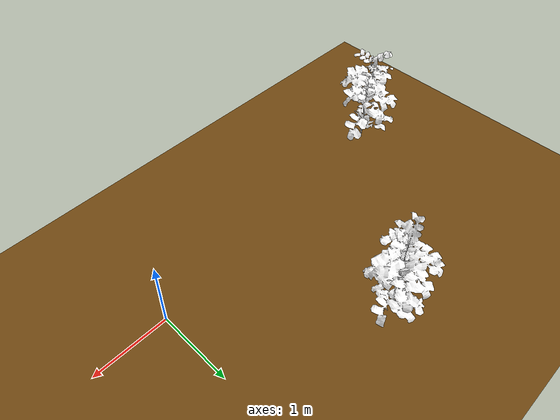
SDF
<sdf version="1.7">
 <world name="field">
  <light name="sun" type="directional">
   <pose>0 0 10 0 -0 0</pose>
   <diffuse>0.8 0.8 0.8 1</diffuse>
   <specular>0.2 0.2 0.2 1</specular>
   <attenuation>
    <range>1000</range>
    <constant>0.9</constant>
    <linear>0.01</linear>
    <quadratic>0.001</quadratic>
   </attenuation>
   <direction>-0.5 0.1 -0.9</direction>
   <spot><inner_angle>0</inner_angle><outer_angle>0</outer_angle><falloff>0</falloff></spot>
  </light>
  <model name="ground_plane">
   <static>true</static>
   <link name="link">
    <collision name="collision">
     <geometry><box><size>12.0 9.0 0.05</size></box></geometry>
     <surface>
      <contact><collide_bitmask>65535</collide_bitmask></contact>
      <friction><ode><mu>100</mu><mu2>50</mu2></ode></friction>
     </surface>
    </collision>
    <visual name="visual">
     <cast_shadows>0</cast_shadows>
     <geometry><box><size>12.0 9.0 0.05</size></box></geometry>
     <material>
      <ambient>0.45 0.29 0.07 1</ambient>
      <diffuse>0.45 0.29 0.07 1</diffuse>
      <specular>0.45 0.29 0.07 1</specular>
     </material>
    </visual>
   </link>
  </model>
  <gravity>0 0 -9.81</gravity>
  <magnetic_field>6e-06 2.3e-05 -4.2e-05</magnetic_field>
  <atmosphere type="adiabatic"/>
  <physics type="ode">
   <max_step_size>0.001</max_step_size>
   <real_time_factor>1</real_time_factor>
   <real_time_update_rate>1000</real_time_update_rate>
  </physics>
  <scene><ambient>0.4 0.4 0.4 1</ambient><background>0.7 0.7 0.7 1</background><shadows>1</shadows></scene>
  <audio><device>default</device></audio>
  <spherical_coordinates>
   <surface_model>EARTH_WGS84</surface_model>
   <latitude_deg>0</latitude_deg>
   <longitude_deg>0</longitude_deg>
   <elevation>0</elevation>
   <heading_deg>0</heading_deg>
  </spherical_coordinates>
  <include>
   <uri>model://tomato_3</uri>
   <name>tomato_3</name>
   <pose>-4.0 -0.40000000000000036 0 0 0 0</pose>
  </include>
  <include>
   <uri>model://tomato_14</uri>
   <name>tomato_14</name>
   <pose>-2.0 1.6999999999999993 0 0 0 0</pose>
  </include>
 </world>
</sdf>

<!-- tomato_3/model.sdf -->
<sdf version="1.6">
  <model name="tomato_3">
    <static>true</static>
    <link name="link">
      <collision name="collision">
        <geometry>
          <box>
            <size>.1 .1 1</size>
          </box>
        </geometry>
      </collision>
      <visual name="branch">
        <geometry>
          <mesh>
            <uri>model://tomato_3/meshes/tomato.dae</uri>
            <submesh>
              <name>Branch1</name>
            </submesh>
          </mesh>
        </geometry>
        <material>
          <diffuse>1.0 1.0 1.0</diffuse>
          <script>
            <uri>model://tomato_3/materials/scripts/</uri>
            <uri>model://tomato_3/materials/textures/</uri>
            <name>branch</name>
          </script>
          <pbr>
            <metal>
              <albedo_map>model://tomato_3/materials/textures/AG15brn1.png</albedo_map>
            </metal>
          </pbr>
        </material>
      </visual>
      <visual name="leaf1">
        <geometry>
          <mesh>
            <uri>model://tomato_3/meshes/tomato.dae</uri>
            <submesh>
              <name>Leaf1</name>
            </submesh>
          </mesh>
        </geometry>
        <material>
          <diffuse>1.0 1.0 1.0</diffuse>
          <script>
            <uri>model://tomato_3/materials/scripts/</uri>
            <uri>model://tomato_3/materials/textures/</uri>
            <name>leaf1</name>
          </script>
          <pbr>
            <metal>
              <albedo_map>model://tomato_3/materials/textures/AG15lef1.png</albedo_map>
            </metal>
          </pbr>
        </material>
      </visual>
      <visual name="leaf2">
        <geometry>
          <mesh>
            <uri>model://tomato_3/meshes/tomato.dae</uri>
            <submesh>
              <name>Leaf2</name>
            </submesh>
          </mesh>
        </geometry>
        <material>
          <diffuse>1.0 1.0 1.0</diffuse>
          <script>
            <uri>model://tomato_3/materials/scripts/</uri>
            <uri>model://tomato_3/materials/textures/</uri>
            <name>leaf2</name>
          </script>
          <pbr>
            <metal>
              <albedo_map>model://tomato_3/materials/textures/AG15lef2.png</albedo_map>
            </metal>
          </pbr>
        </material>
      </visual>
      <visual name="fruit1">
        <geometry>
          <mesh>
            <uri>model://tomato_3/meshes/tomato.dae</uri>
            <submesh>
              <name>Fruit1</name>
            </submesh>
          </mesh>
        </geometry>
        <material>
          <diffuse>1.0 1.0 1.0</diffuse>
          <script>
            <uri>model://tomato_3/materials/scripts/</uri>
            <uri>model://tomato_3/materials/textures/</uri>
            <name>fruit1</name>
          </script>
          <pbr>
            <metal>
              <albedo_map>model://tomato_3/materials/textures/AG15frt1.png</albedo_map>
            </metal>
          </pbr>
        </material>
      </visual>
      <visual name="fruit2">
        <geometry>
          <mesh>
            <uri>model://tomato_3/meshes/tomato.dae</uri>
            <submesh>
              <name>Fruit2</name>
            </submesh>
          </mesh>
        </geometry>
        <material>
          <diffuse>1.0 1.0 1.0</diffuse>
          <script>
            <uri>model://tomato_3/materials/scripts/</uri>
            <uri>model://tomato_3/materials/textures/</uri>
            <name>fruit2</name>
          </script>
          <pbr>
            <metal>
              <albedo_map>model://tomato_3/materials/textures/AG15frt2.png</albedo_map>
            </metal>
          </pbr>
        </material>
      </visual>
      <visual name="fruit3">
        <geometry>
          <mesh>
            <uri>model://tomato_3/meshes/tomato.dae</uri>
            <submesh>
              <name>Fruit3</name>
            </submesh>
          </mesh>
        </geometry>
        <material>
          <diffuse>1.0 1.0 1.0</diffuse>
          <script>
            <uri>model://tomato_3/materials/scripts/</uri>
            <uri>model://tomato_3/materials/textures/</uri>
            <name>fruit3</name>
          </script>
          <pbr>
            <metal>
              <albedo_map>model://tomato_3/materials/textures/AG15frt3.png</albedo_map>
            </metal>
          </pbr>
        </material>
      </visual>
      <visual name="fruit4">
        <geometry>
          <mesh>
            <uri>model://tomato_3/meshes/tomato.dae</uri>
            <submesh>
              <name>Fruit4</name>
            </submesh>
          </mesh>
        </geometry>
        <material>
          <diffuse>1.0 1.0 1.0</diffuse>
          <script>
            <uri>model://tomato_3/materials/scripts/</uri>
            <uri>model://tomato_3/materials/textures/</uri>
            <name>fruit4</name>
          </script>
          <pbr>
            <metal>
              <albedo_map>model://tomato_3/materials/textures/AG15frt4.png</albedo_map>
            </metal>
          </pbr>
        </material>
      </visual>
      <visual name="blossom1">
        <geometry>
          <mesh>
            <uri>model://tomato_3/meshes/tomato.dae</uri>
            <submesh>
              <name>Blossom1</name>
            </submesh>
          </mesh>
        </geometry>
        <material>
          <diffuse>1.0 1.0 1.0</diffuse>
          <script>
            <uri>model://tomato_3/materials/scripts/</uri>
            <uri>model://tomato_3/materials/textures/</uri>
            <name>blossom1</name>
          </script>
          <pbr>
            <metal>
              <albedo_map>model://tomato_3/materials/textures/AG15blo1.png</albedo_map>
            </metal>
          </pbr>
        </material>
      </visual>
      <visual name="blossom2">
        <geometry>
          <mesh>
            <uri>model://tomato_3/meshes/tomato.dae</uri>
            <submesh>
              <name>Blossom2</name>
            </submesh>
          </mesh>
        </geometry>
        <material>
          <diffuse>1.0 1.0 1.0</diffuse>
          <script>
            <uri>model://tomato_3/materials/scripts/</uri>
            <uri>model://tomato_3/materials/textures/</uri>
            <name>blossom2</name>
          </script>
          <pbr>
            <metal>
              <albedo_map>model://tomato_3/materials/textures/AG15blo2.png</albedo_map>
            </metal>
          </pbr>
        </material>
      </visual>
      <visual name="blossom3">
        <geometry>
          <mesh>
            <uri>model://tomato_3/meshes/tomato.dae</uri>
            <submesh>
              <name>Blossom3</name>
            </submesh>
          </mesh>
        </geometry>
        <material>
          <diffuse>1.0 1.0 1.0</diffuse>
          <script>
            <uri>model://tomato_3/materials/scripts/</uri>
            <uri>model://tomato_3/materials/textures/</uri>
            <name>blossom3</name>
          </script>
          <pbr>
            <metal>
              <albedo_map>model://tomato_3/materials/textures/AG15blo3.png</albedo_map>
            </metal>
          </pbr>
        </material>
      </visual>
    </link>
  </model>
</sdf>

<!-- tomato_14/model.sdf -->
<sdf version="1.6">
  <model name="tomato_14">
    <static>true</static>
    <link name="link">
      <collision name="collision">
        <geometry>
          <box>
            <size>.1 .1 1</size>
          </box>
        </geometry>
      </collision>
      <visual name="branch">
        <geometry>
          <mesh>
            <uri>model://tomato_14/meshes/tomato.dae</uri>
            <submesh>
              <name>Branch1</name>
            </submesh>
          </mesh>
        </geometry>
        <material>
          <diffuse>1.0 1.0 1.0</diffuse>
          <script>
            <uri>model://tomato_14/materials/scripts/</uri>
            <uri>model://tomato_14/materials/textures/</uri>
            <name>branch</name>
          </script>
          <pbr>
            <metal>
              <albedo_map>model://tomato_14/materials/textures/AG15brn1.png</albedo_map>
            </metal>
          </pbr>
        </material>
      </visual>
      <visual name="leaf1">
        <geometry>
          <mesh>
            <uri>model://tomato_14/meshes/tomato.dae</uri>
            <submesh>
              <name>Leaf1</name>
            </submesh>
          </mesh>
        </geometry>
        <material>
          <diffuse>1.0 1.0 1.0</diffuse>
          <script>
            <uri>model://tomato_14/materials/scripts/</uri>
            <uri>model://tomato_14/materials/textures/</uri>
            <name>leaf1</name>
          </script>
          <pbr>
            <metal>
              <albedo_map>model://tomato_14/materials/textures/AG15lef1.png</albedo_map>
            </metal>
          </pbr>
        </material>
      </visual>
      <visual name="leaf2">
        <geometry>
          <mesh>
            <uri>model://tomato_14/meshes/tomato.dae</uri>
            <submesh>
              <name>Leaf2</name>
            </submesh>
          </mesh>
        </geometry>
        <material>
          <diffuse>1.0 1.0 1.0</diffuse>
          <script>
            <uri>model://tomato_14/materials/scripts/</uri>
            <uri>model://tomato_14/materials/textures/</uri>
            <name>leaf2</name>
          </script>
          <pbr>
            <metal>
              <albedo_map>model://tomato_14/materials/textures/AG15lef2.png</albedo_map>
            </metal>
          </pbr>
        </material>
      </visual>
      <visual name="fruit1">
        <geometry>
          <mesh>
            <uri>model://tomato_14/meshes/tomato.dae</uri>
            <submesh>
              <name>Fruit1</name>
            </submesh>
          </mesh>
        </geometry>
        <material>
          <diffuse>1.0 1.0 1.0</diffuse>
          <script>
            <uri>model://tomato_14/materials/scripts/</uri>
            <uri>model://tomato_14/materials/textures/</uri>
            <name>fruit1</name>
          </script>
          <pbr>
            <metal>
              <albedo_map>model://tomato_14/materials/textures/AG15frt1.png</albedo_map>
            </metal>
          </pbr>
        </material>
      </visual>
      <visual name="fruit2">
        <geometry>
          <mesh>
            <uri>model://tomato_14/meshes/tomato.dae</uri>
            <submesh>
              <name>Fruit2</name>
            </submesh>
          </mesh>
        </geometry>
        <material>
          <diffuse>1.0 1.0 1.0</diffuse>
          <script>
            <uri>model://tomato_14/materials/scripts/</uri>
            <uri>model://tomato_14/materials/textures/</uri>
            <name>fruit2</name>
          </script>
          <pbr>
            <metal>
              <albedo_map>model://tomato_14/materials/textures/AG15frt2.png</albedo_map>
            </metal>
          </pbr>
        </material>
      </visual>
      <visual name="fruit3">
        <geometry>
          <mesh>
            <uri>model://tomato_14/meshes/tomato.dae</uri>
            <submesh>
              <name>Fruit3</name>
            </submesh>
          </mesh>
        </geometry>
        <material>
          <diffuse>1.0 1.0 1.0</diffuse>
          <script>
            <uri>model://tomato_14/materials/scripts/</uri>
            <uri>model://tomato_14/materials/textures/</uri>
            <name>fruit3</name>
          </script>
          <pbr>
            <metal>
              <albedo_map>model://tomato_14/materials/textures/AG15frt3.png</albedo_map>
            </metal>
          </pbr>
        </material>
      </visual>
      <visual name="fruit4">
        <geometry>
          <mesh>
            <uri>model://tomato_14/meshes/tomato.dae</uri>
            <submesh>
              <name>Fruit4</name>
            </submesh>
          </mesh>
        </geometry>
        <material>
          <diffuse>1.0 1.0 1.0</diffuse>
          <script>
            <uri>model://tomato_14/materials/scripts/</uri>
            <uri>model://tomato_14/materials/textures/</uri>
            <name>fruit4</name>
          </script>
          <pbr>
            <metal>
              <albedo_map>model://tomato_14/materials/textures/AG15frt4.png</albedo_map>
            </metal>
          </pbr>
        </material>
      </visual>
      <visual name="blossom1">
        <geometry>
          <mesh>
            <uri>model://tomato_14/meshes/tomato.dae</uri>
            <submesh>
              <name>Blossom1</name>
            </submesh>
          </mesh>
        </geometry>
        <material>
          <diffuse>1.0 1.0 1.0</diffuse>
          <script>
            <uri>model://tomato_14/materials/scripts/</uri>
            <uri>model://tomato_14/materials/textures/</uri>
            <name>blossom1</name>
          </script>
          <pbr>
            <metal>
              <albedo_map>model://tomato_14/materials/textures/AG15blo1.png</albedo_map>
            </metal>
          </pbr>
        </material>
      </visual>
      <visual name="blossom2">
        <geometry>
          <mesh>
            <uri>model://tomato_14/meshes/tomato.dae</uri>
            <submesh>
              <name>Blossom2</name>
            </submesh>
          </mesh>
        </geometry>
        <material>
          <diffuse>1.0 1.0 1.0</diffuse>
          <script>
            <uri>model://tomato_14/materials/scripts/</uri>
            <uri>model://tomato_14/materials/textures/</uri>
            <name>blossom2</name>
          </script>
          <pbr>
            <metal>
              <albedo_map>model://tomato_14/materials/textures/AG15blo2.png</albedo_map>
            </metal>
          </pbr>
        </material>
      </visual>
      <visual name="blossom3">
        <geometry>
          <mesh>
            <uri>model://tomato_14/meshes/tomato.dae</uri>
            <submesh>
              <name>Blossom3</name>
            </submesh>
          </mesh>
        </geometry>
        <material>
          <diffuse>1.0 1.0 1.0</diffuse>
          <script>
            <uri>model://tomato_14/materials/scripts/</uri>
            <uri>model://tomato_14/materials/textures/</uri>
            <name>blossom3</name>
          </script>
          <pbr>
            <metal>
              <albedo_map>model://tomato_14/materials/textures/AG15blo3.png</albedo_map>
            </metal>
          </pbr>
        </material>
      </visual>
    </link>
  </model>
</sdf>
